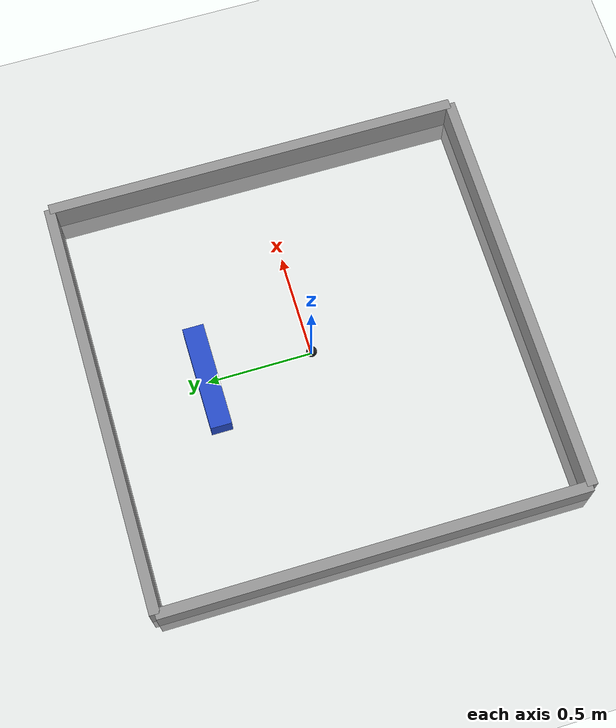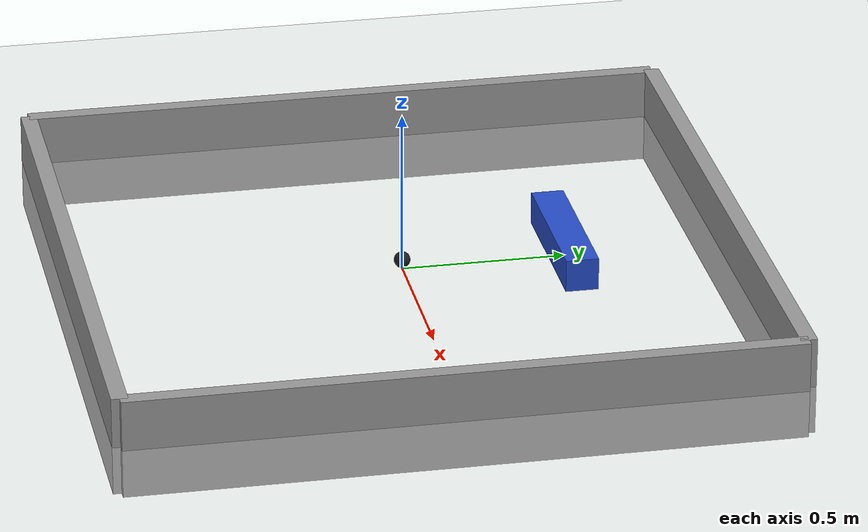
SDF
<sdf version='1.4'>
  <world name='default'>
    <plugin name="gripperPlugin" filename="libgripperPluginWorld.so"/>
    <include>
      <uri>model://ground_plane</uri>
    </include>
    <include>
      <uri>model://sun</uri>
    </include>
    <model name='gripper'>
      <pose>0.0 0.0 0.03 0 0 0</pose>
      <link name='finger'>
        <inertial>
          <mass>100</mass>
        </inertial>
        <collision name='collision'>
 <surface>
  <friction>
   <ode>
    <mu>0.01</mu>
    <mu2>0.01</mu2>
   </ode>
  </friction>
 </surface>
          <geometry>
            <sphere>
              <radius>0.025</radius>
            </sphere>
          </geometry>
        </collision>
        <visual name='visual'>
          <geometry>
            <sphere>
              <radius>0.025</radius>
            </sphere>
          </geometry>
          <material>
            <script>
              <uri>file://media/materials/scripts/gazebo.material</uri>
              <name>Gazebo/Black</name>
            </script>
          </material>
        </visual>
        <gravity>0</gravity>
        <sensor name='gripperContact' type='contact'>
          <contact>
            <collision>collision</collision>
          </contact>
        <update_rate>10.0</update_rate>
        </sensor>
      </link>
      <static>0</static>
    </model>
    <model name='blockA'>
      <pose>-0.0 0.5 0.05 0 0 0</pose>
      <link name='link'>
        <inertial>
          <mass>100</mass>
        </inertial>
        <collision name='collision'>
          <geometry>
            <box>
              <size>0.5 0.1 0.1</size>
            </box>
          </geometry>
          <max_contacts>10</max_contacts>
        </collision>
        <visual name='visual'>
          <geometry>
            <box>
              <size>0.5 0.1 0.1</size>
            </box>
          </geometry>
          <material>
            <script>
              <uri>file://media/materials/scripts/gazebo.material</uri>
              <name>Gazebo/Blue</name>
            </script>
          </material>
        </visual>
      </link>
      <static>0</static>
    </model>
    <model name='wall1'>
      <pose>0.0 1.0 0 0 0 0</pose>
      <link name='link'>
        <collision name='collision'>
          <geometry>
            <box>
              <size>2 0.05 0.3</size>
            </box>
          </geometry>
          <max_contacts>10</max_contacts>
        </collision>
        <visual name='visual'>
          <geometry>
            <box>
              <size>2 0.05 0.3</size>
            </box>
          </geometry>
          <material>
            <script>
              <uri>file://media/materials/scripts/gazebo.material</uri>
              <name>Gazebo/Grey</name>
            </script>
          </material>
        </visual>
      </link>
      <static>1</static>
    </model>
    <model name='wall2'>
      <pose>0.0 -1.0 0 0 0 0</pose>
      <link name='link'>
        <collision name='collision'>
          <geometry>
            <box>
              <size>2 0.05 0.3</size>
            </box>
          </geometry>
          <max_contacts>10</max_contacts>
        </collision>
        <visual name='visual'>
          <geometry>
            <box>
              <size>2 0.05 0.3</size>
            </box>
          </geometry>
          <material>
            <script>
              <uri>file://media/materials/scripts/gazebo.material</uri>
              <name>Gazebo/Grey</name>
            </script>
          </material>
        </visual>
      </link>
      <static>1</static>
    </model>
    <model name='wall3'>
      <pose>1.0 0.0 0 0 0 0</pose>
      <link name='link'>
        <collision name='collision'>
          <geometry>
            <box>
              <size>0.05 2 0.3</size>
            </box>
          </geometry>
          <max_contacts>10</max_contacts>
        </collision>
        <visual name='visual'>
          <geometry>
            <box>
              <size>0.05 2 0.3</size>
            </box>
          </geometry>
          <material>
            <script>
              <uri>file://media/materials/scripts/gazebo.material</uri>
              <name>Gazebo/Grey</name>
            </script>
          </material>
        </visual>
      </link>
      <static>1</static>
    </model>
    <model name='wall4'>
      <pose>-1.0 0.0 0 0 0 0</pose>
      <link name='link'>
        <collision name='collision'>
          <geometry>
            <box>
              <size>0.05 2 0.3</size>
            </box>
          </geometry>
          <max_contacts>10</max_contacts>
        </collision>
        <visual name='visual'>
          <geometry>
            <box>
              <size>0.05 2 0.3</size>
            </box>
          </geometry>
          <material>
            <script>
              <uri>file://media/materials/scripts/gazebo.material</uri>
              <name>Gazebo/Grey</name>
            </script>
          </material>
        </visual>
      </link>
      <static>1</static>
    </model>
     <model name='gripperShadow'>
      <pose>0.0 0.0 0.03 0 0 0</pose>
      <link name='finger'>
        <visual name='visual'>
          <geometry>
            <sphere>
              <radius>0.025</radius>
            </sphere>
          </geometry>
          <material>
            <script>
              <uri>file://media/materials/scripts/gazebo.material</uri>
              <name>Gazebo/GreyTransparent</name>
            </script>
          </material>
        </visual>
        <gravity>0</gravity>
      </link>
      <static>0</static>
    </model>
        <model name='blockAShadow'>
      <pose>-0.0 0.5 0.05 0 0 0</pose>
      <link name='link'>
        <visual name='visual'>
          <geometry>
            <box>
              <size>0.5 0.1 0.1</size>
            </box>
          </geometry>
          <material>
            <script>
              <uri>file://media/materials/scripts/gazebo.material</uri>
              <name>Gazebo/BlueTransparent</name>
            </script>
          </material>
        </visual>
        <gravity>0</gravity>
      </link>
      <static>0</static>
    </model>
  </world>
</sdf>
